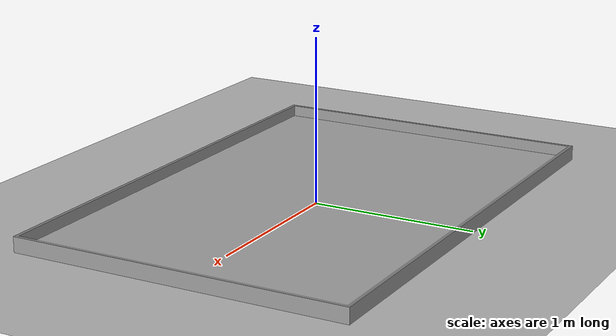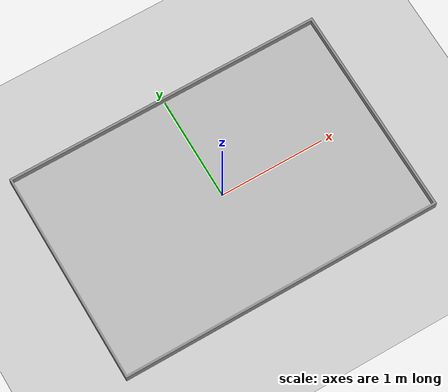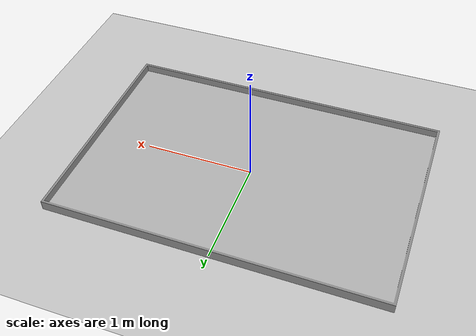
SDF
<sdf version='1.7'>
  <world name='default'>
    <include>
      <uri>model://sun</uri>
    </include>
    <!-- A ground plane -->
    <include>
      <uri>model://ground_plane</uri>
    </include>

    <model name='robot_table'>
      <static>1</static>
      <link name='link'>
        <collision name='collision'>
          <geometry>
            <mesh>
              <scale>1 1 1</scale>
              <uri>model://robot_table/meshes/table_2024.dae</uri>
            </mesh>
            <surface>
              <friction>
                <ode>
                  <mu>1.2</mu>
                  <mu2>1.2</mu2>
                </ode>
              </friction>
            </surface>
          </geometry>
          <max_contacts>10</max_contacts>
          <surface>
            <contact>
              <ode/>
            </contact>
            <bounce/>
            <friction>
              <torsional>
                <ode/>
              </torsional>
              <ode/>
            </friction>
          </surface>
        </collision>
        <visual name='visual'>
          <geometry>
            <mesh>
              <scale>1 1 1</scale>
              <uri>model://robot_table/meshes/table_2024.dae</uri>
            </mesh>
          </geometry>
        </visual>
        <self_collide>0</self_collide>
        <enable_wind>0</enable_wind>
        <kinematic>0</kinematic>
      </link>
      <pose>0 0 0.03 0 -0 0</pose>
    </model>

  </world>
</sdf>
